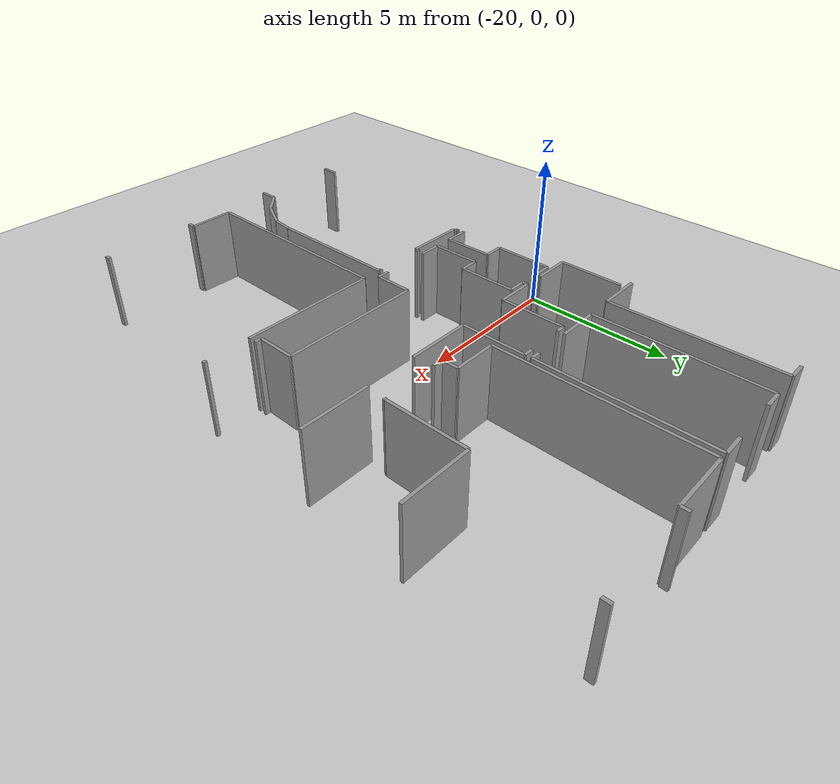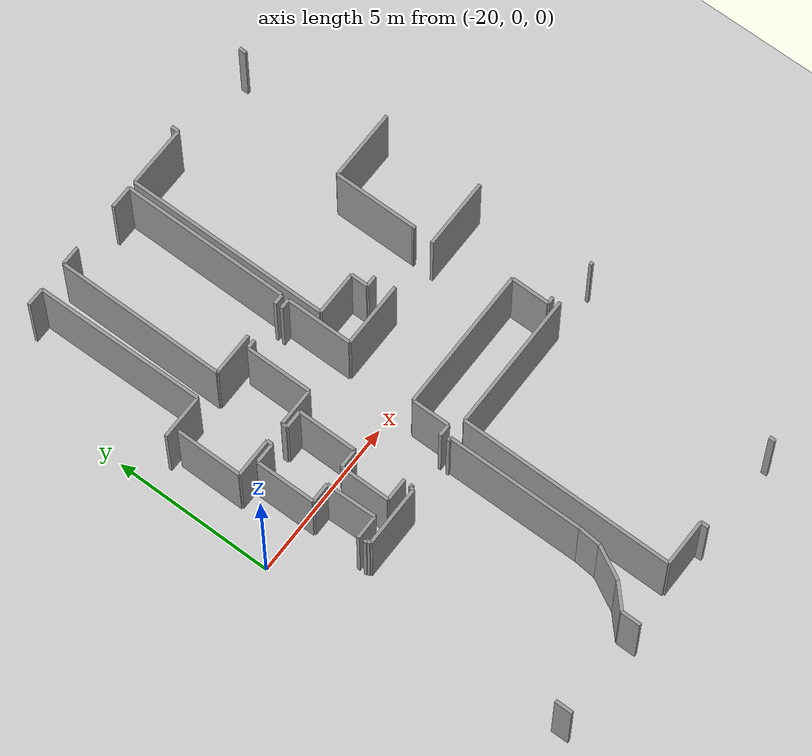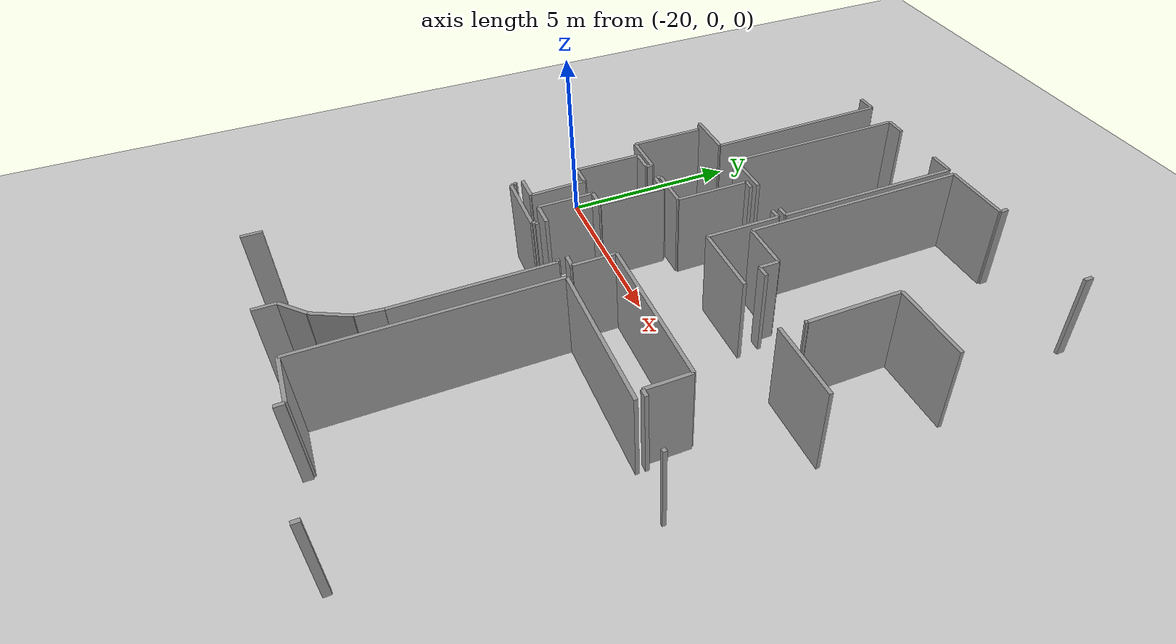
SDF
<sdf version="1.6">
 <world name="default">
  <model name="ground_plane">
   <static>1</static>
   <link name="link">
    <collision name="collision">
     <geometry><plane><normal>0 0 1</normal><size>100 100</size></plane></geometry>
     <surface><friction><ode><mu>100</mu><mu2>50</mu2></ode></friction></surface>
    </collision>
    <visual name="visual">
     <cast_shadows>0</cast_shadows>
     <geometry><plane><normal>0 0 1</normal><size>100 100</size></plane></geometry>
     <material>
      <script><uri>file://media/materials/scripts/gazebo.material</uri><name>Gazebo/Grey</name></script>
     </material>
    </visual>
   </link>
  </model>
  <model name="0510034841_A-40">
   <static>1</static>
   <link name="Wall_41">
    <collision name="Wall_41_Collision">
     <geometry><box><size>0.744516096273 0.1 2.5</size></box></geometry>
     <pose>0.372258048136 0 1.25 0 0 0</pose>
    </collision>
    <visual name="Wall_41_Visual">
     <pose>0.372258048136 0 1.25 0 0 0</pose>
     <geometry><box><size>0.744516096273 0.1 2.5</size></box></geometry>
     <material>
      <script><uri>file://media/materials/scripts/gazebo.material</uri><name>Gazebo/Grey</name></script>
      <ambient>1 1 1 1</ambient>
     </material>
    </visual>
    <pose>16.0339443485 -11.3138519346 0 0 0 3.14159265359</pose>
   </link>
   <link name="Wall_55">
    <collision name="Wall_55_Collision">
     <geometry><box><size>2.03653396974 0.1 2.5</size></box></geometry>
     <pose>1.01826698487 0 1.25 0 0 0</pose>
    </collision>
    <visual name="Wall_55_Visual">
     <pose>1.01826698487 0 1.25 0 0 0</pose>
     <geometry><box><size>2.03653396974 0.1 2.5</size></box></geometry>
     <material>
      <script><uri>file://media/materials/scripts/gazebo.material</uri><name>Gazebo/Grey</name></script>
      <ambient>1 1 1 1</ambient>
     </material>
    </visual>
    <pose>14.8125063471 -5.70871839139 0 0 0 -1.57079632679</pose>
   </link>
   <link name="Wall_56">
    <collision name="Wall_56_Collision">
     <geometry><box><size>1.20023865137 0.1 2.5</size></box></geometry>
     <pose>0.600119325683 0 1.25 0 0 0</pose>
    </collision>
    <visual name="Wall_56_Visual">
     <pose>0.600119325683 0 1.25 0 0 0</pose>
     <geometry><box><size>1.20023865137 0.1 2.5</size></box></geometry>
     <material>
      <script><uri>file://media/materials/scripts/gazebo.material</uri><name>Gazebo/Grey</name></script>
      <ambient>1 1 1 1</ambient>
     </material>
    </visual>
    <pose>14.8125063471 -7.74525236113 0 0 0 0.0</pose>
   </link>
   <link name="Wall_57">
    <collision name="Wall_57_Collision">
     <geometry><box><size>0.166929013913 0.1 2.5</size></box></geometry>
     <pose>0.0834645069564 0 1.25 0 0 0</pose>
    </collision>
    <visual name="Wall_57_Visual">
     <pose>0.0834645069564 0 1.25 0 0 0</pose>
     <geometry><box><size>0.166929013913 0.1 2.5</size></box></geometry>
     <material>
      <script><uri>file://media/materials/scripts/gazebo.material</uri><name>Gazebo/Grey</name></script>
      <ambient>1 1 1 1</ambient>
     </material>
    </visual>
    <pose>16.0127449985 -7.74525236113 0 0 0 -1.57079632679</pose>
   </link>
   <link name="Wall_58">
    <collision name="Wall_58_Collision">
     <geometry><box><size>0.626079008835 0.1 2.5</size></box></geometry>
     <pose>0.313039504418 0 1.25 0 0 0</pose>
    </collision>
    <visual name="Wall_58_Visual">
     <pose>0.313039504418 0 1.25 0 0 0</pose>
     <geometry><box><size>0.626079008835 0.1 2.5</size></box></geometry>
     <material>
      <script><uri>file://media/materials/scripts/gazebo.material</uri><name>Gazebo/Grey</name></script>
      <ambient>1 1 1 1</ambient>
     </material>
    </visual>
    <pose>16.0127449985 -7.91218137504 0 0 0 3.14159265359</pose>
   </link>
   <link name="Wall_59">
    <collision name="Wall_59_Collision">
     <geometry><box><size>1.84535899259 0.1 2.5</size></box></geometry>
     <pose>0.922679496293 0 1.25 0 0 0</pose>
    </collision>
    <visual name="Wall_59_Visual">
     <pose>0.922679496293 0 1.25 0 0 0</pose>
     <geometry><box><size>1.84535899259 0.1 2.5</size></box></geometry>
     <material>
      <script><uri>file://media/materials/scripts/gazebo.material</uri><name>Gazebo/Grey</name></script>
      <ambient>1 1 1 1</ambient>
     </material>
    </visual>
    <pose>15.3866659896 -7.91218137504 0 0 0 -1.57079632679</pose>
   </link>
   <link name="Wall_60">
    <collision name="Wall_60_Collision">
     <geometry><box><size>0.606783792018 0.1 2.5</size></box></geometry>
     <pose>0.303391896009 0 1.25 0 0 0</pose>
    </collision>
    <visual name="Wall_60_Visual">
     <pose>0.303391896009 0 1.25 0 0 0</pose>
     <geometry><box><size>0.606783792018 0.1 2.5</size></box></geometry>
     <material>
      <script><uri>file://media/materials/scripts/gazebo.material</uri><name>Gazebo/Grey</name></script>
      <ambient>1 1 1 1</ambient>
     </material>
    </visual>
    <pose>15.3866659896 -9.75754036762 0 0 0 0.0</pose>
   </link>
   <link name="Wall_61">
    <collision name="Wall_61_Collision">
     <geometry><box><size>1.55683830356 0.1 2.5</size></box></geometry>
     <pose>0.778419151782 0 1.25 0 0 0</pose>
    </collision>
    <visual name="Wall_61_Visual">
     <pose>0.778419151782 0 1.25 0 0 0</pose>
     <geometry><box><size>1.55683830356 0.1 2.5</size></box></geometry>
     <material>
      <script><uri>file://media/materials/scripts/gazebo.material</uri><name>Gazebo/Grey</name></script>
      <ambient>1 1 1 1</ambient>
     </material>
    </visual>
    <pose>15.9934497817 -9.75754036762 0 0 0 -1.54478262046</pose>
   </link>
   <link name="Wall_62">
    <collision name="Wall_62_Collision">
     <geometry><box><size>1.37249923835 0.1 2.5</size></box></geometry>
     <pose>0.686249619173 0 1.25 0 0 0</pose>
    </collision>
    <visual name="Wall_62_Visual">
     <pose>0.686249619173 0 1.25 0 0 0</pose>
     <geometry><box><size>1.37249923835 0.1 2.5</size></box></geometry>
     <material>
      <script><uri>file://media/materials/scripts/gazebo.material</uri><name>Gazebo/Grey</name></script>
      <ambient>1 1 1 1</ambient>
     </material>
    </visual>
    <pose>15.8661267391 -5.52198639179 0 0 0 3.14159265359</pose>
   </link>
   <link name="Wall_66">
    <collision name="Wall_66_Collision">
     <geometry><box><size>0.561719305372 0.1 2.5</size></box></geometry>
     <pose>0.280859652686 0 1.25 0 0 0</pose>
    </collision>
    <visual name="Wall_66_Visual">
     <pose>0.280859652686 0 1.25 0 0 0</pose>
     <geometry><box><size>0.561719305372 0.1 2.5</size></box></geometry>
     <material>
      <script><uri>file://media/materials/scripts/gazebo.material</uri><name>Gazebo/Grey</name></script>
      <ambient>1 1 1 1</ambient>
     </material>
    </visual>
    <pose>15.2480450899 -0.235731694932 0 0 0 0.0</pose>
   </link>
   <link name="Wall_67">
    <collision name="Wall_67_Collision">
     <geometry><box><size>5.28655515756 0.1 2.5</size></box></geometry>
     <pose>2.64327757878 0 1.25 0 0 0</pose>
    </collision>
    <visual name="Wall_67_Visual">
     <pose>2.64327757878 0 1.25 0 0 0</pose>
     <geometry><box><size>5.28655515756 0.1 2.5</size></box></geometry>
     <material>
      <script><uri>file://media/materials/scripts/gazebo.material</uri><name>Gazebo/Grey</name></script>
      <ambient>1 1 1 1</ambient>
     </material>
    </visual>
    <pose>15.8097643952 -0.235731694932 0 0 0 -1.56013467474</pose>
   </link>
   <link name="Wall_68">
    <collision name="Wall_68_Collision">
     <geometry><box><size>0.108408652381 0.1 2.5</size></box></geometry>
     <pose>0.0542043261907 0 1.25 0 0 0</pose>
    </collision>
    <visual name="Wall_68_Visual">
     <pose>0.0542043261907 0 1.25 0 0 0</pose>
     <geometry><box><size>0.108408652381 0.1 2.5</size></box></geometry>
     <material>
      <script><uri>file://media/materials/scripts/gazebo.material</uri><name>Gazebo/Grey</name></script>
      <ambient>1 1 1 1</ambient>
     </material>
    </visual>
    <pose>19.0090890627 -11.5597390068 0 0 0 3.14159265359</pose>
   </link>
   <link name="Wall_69">
    <collision name="Wall_69_Collision">
     <geometry><box><size>0.108535594597 0.1 2.5</size></box></geometry>
     <pose>0.0542677972987 0 1.25 0 0 0</pose>
    </collision>
    <visual name="Wall_69_Visual">
     <pose>0.0542677972987 0 1.25 0 0 0</pose>
     <geometry><box><size>0.108535594597 0.1 2.5</size></box></geometry>
     <material>
      <script><uri>file://media/materials/scripts/gazebo.material</uri><name>Gazebo/Grey</name></script>
      <ambient>1 1 1 1</ambient>
     </material>
    </visual>
    <pose>17.3481771098 -11.5597390068 0 0 0 3.14159265359</pose>
   </link>
   <link name="Wall_70">
    <collision name="Wall_70_Collision">
     <geometry><box><size>0.108535594597 0.1 2.5</size></box></geometry>
     <pose>0.0542677972987 0 1.25 0 0 0</pose>
    </collision>
    <visual name="Wall_70_Visual">
     <pose>0.0542677972987 0 1.25 0 0 0</pose>
     <geometry><box><size>0.108535594597 0.1 2.5</size></box></geometry>
     <material>
      <script><uri>file://media/materials/scripts/gazebo.material</uri><name>Gazebo/Grey</name></script>
      <ambient>1 1 1 1</ambient>
     </material>
    </visual>
    <pose>17.2396415152 -11.5597390068 0 0 0 -1.57079632679</pose>
   </link>
   <link name="Wall_71">
    <collision name="Wall_71_Collision">
     <geometry><box><size>1.86313090281 0.1 2.5</size></box></geometry>
     <pose>0.931565451407 0 1.25 0 0 0</pose>
    </collision>
    <visual name="Wall_71_Visual">
     <pose>0.931565451407 0 1.25 0 0 0</pose>
     <geometry><box><size>1.86313090281 0.1 2.5</size></box></geometry>
     <material>
      <script><uri>file://media/materials/scripts/gazebo.material</uri><name>Gazebo/Grey</name></script>
      <ambient>1 1 1 1</ambient>
     </material>
    </visual>
    <pose>17.2396415152 -11.6682746014 0 0 0 3.14159265359</pose>
   </link>
   <link name="Wall_72">
    <collision name="Wall_72_Collision">
     <geometry><box><size>0.132527673403 0.1 2.5</size></box></geometry>
     <pose>0.0662638367015 0 1.25 0 0 0</pose>
    </collision>
    <visual name="Wall_72_Visual">
     <pose>0.0662638367015 0 1.25 0 0 0</pose>
     <geometry><box><size>0.132527673403 0.1 2.5</size></box></geometry>
     <material>
      <script><uri>file://media/materials/scripts/gazebo.material</uri><name>Gazebo/Grey</name></script>
      <ambient>1 1 1 1</ambient>
     </material>
    </visual>
    <pose>15.3765106124 -11.6682746014 0 0 0 1.57079632679</pose>
   </link>
   <link name="Wall_73">
    <collision name="Wall_73_Collision">
     <geometry><box><size>0.0870823601097 0.1 2.5</size></box></geometry>
     <pose>0.0435411800548 0 1.25 0 0 0</pose>
    </collision>
    <visual name="Wall_73_Visual">
     <pose>0.0435411800548 0 1.25 0 0 0</pose>
     <geometry><box><size>0.0870823601097 0.1 2.5</size></box></geometry>
     <material>
      <script><uri>file://media/materials/scripts/gazebo.material</uri><name>Gazebo/Grey</name></script>
      <ambient>1 1 1 1</ambient>
     </material>
    </visual>
    <pose>15.3765106124 -11.535746928 0 0 0 3.14159265359</pose>
   </link>
   <link name="Wall_79">
    <collision name="Wall_79_Collision">
     <geometry><box><size>0.547247892759 0.1 2.5</size></box></geometry>
     <pose>0.27362394638 0 1.25 0 0 0</pose>
    </collision>
    <visual name="Wall_79_Visual">
     <pose>0.27362394638 0 1.25 0 0 0</pose>
     <geometry><box><size>0.547247892759 0.1 2.5</size></box></geometry>
     <material>
      <script><uri>file://media/materials/scripts/gazebo.material</uri><name>Gazebo/Grey</name></script>
      <ambient>1 1 1 1</ambient>
     </material>
    </visual>
    <pose>14.8107291561 -18.0868538641 0 0 0 -1.57079632679</pose>
   </link>
   <link name="Wall_80">
    <collision name="Wall_80_Collision">
     <geometry><box><size>0.602467756677 0.1 2.5</size></box></geometry>
     <pose>0.301233878339 0 1.25 0 0 0</pose>
    </collision>
    <visual name="Wall_80_Visual">
     <pose>0.301233878339 0 1.25 0 0 0</pose>
     <geometry><box><size>0.602467756677 0.1 2.5</size></box></geometry>
     <material>
      <script><uri>file://media/materials/scripts/gazebo.material</uri><name>Gazebo/Grey</name></script>
      <ambient>1 1 1 1</ambient>
     </material>
    </visual>
    <pose>17.8079618158 -18.6341017569 0 0 0 1.57079632679</pose>
   </link>
   <link name="Wall_81">
    <collision name="Wall_81_Collision">
     <geometry><box><size>0.872937094638 0.1 2.5</size></box></geometry>
     <pose>0.436468547319 0 1.25 0 0 0</pose>
    </collision>
    <visual name="Wall_81_Visual">
     <pose>0.436468547319 0 1.25 0 0 0</pose>
     <geometry><box><size>0.872937094638 0.1 2.5</size></box></geometry>
     <material>
      <script><uri>file://media/materials/scripts/gazebo.material</uri><name>Gazebo/Grey</name></script>
      <ambient>1 1 1 1</ambient>
     </material>
    </visual>
    <pose>17.8079618158 -18.0316340002 0 0 0 0.750121107763</pose>
   </link>
   <link name="Wall_82">
    <collision name="Wall_82_Collision">
     <geometry><box><size>1.08445523271 0.1 2.5</size></box></geometry>
     <pose>0.542227616355 0 1.25 0 0 0</pose>
    </collision>
    <visual name="Wall_82_Visual">
     <pose>0.542227616355 0 1.25 0 0 0</pose>
     <geometry><box><size>1.08445523271 0.1 2.5</size></box></geometry>
     <material>
      <script><uri>file://media/materials/scripts/gazebo.material</uri><name>Gazebo/Grey</name></script>
      <ambient>1 1 1 1</ambient>
     </material>
    </visual>
    <pose>18.446608104 -17.436528892 0 0 0 1.08311815572</pose>
   </link>
   <link name="Wall_83">
    <collision name="Wall_83_Collision">
     <geometry><box><size>0.6926302795 0.1 2.5</size></box></geometry>
     <pose>0.34631513975 0 1.25 0 0 0</pose>
    </collision>
    <visual name="Wall_83_Visual">
     <pose>0.34631513975 0 1.25 0 0 0</pose>
     <geometry><box><size>0.6926302795 0.1 2.5</size></box></geometry>
     <material>
      <script><uri>file://media/materials/scripts/gazebo.material</uri><name>Gazebo/Grey</name></script>
      <ambient>1 1 1 1</ambient>
     </material>
    </visual>
    <pose>18.9547577943 -16.4784959886 0 0 0 1.47645278719</pose>
   </link>
   <link name="Wall_84">
    <collision name="Wall_84_Collision">
     <geometry><box><size>4.22922095531 0.1 2.5</size></box></geometry>
     <pose>2.11461047765 0 1.25 0 0 0</pose>
    </collision>
    <visual name="Wall_84_Visual">
     <pose>2.11461047765 0 1.25 0 0 0</pose>
     <geometry><box><size>4.22922095531 0.1 2.5</size></box></geometry>
     <material>
      <script><uri>file://media/materials/scripts/gazebo.material</uri><name>Gazebo/Grey</name></script>
      <ambient>1 1 1 1</ambient>
     </material>
    </visual>
    <pose>19.0200060932 -15.7889458718 0 0 0 1.57337766336</pose>
   </link>
   <link name="Wall_85">
    <collision name="Wall_85_Collision">
     <geometry><box><size>0.315070579872 0.1 2.5</size></box></geometry>
     <pose>0.157535289936 0 1.25 0 0 0</pose>
    </collision>
    <visual name="Wall_85_Visual">
     <pose>0.157535289936 0 1.25 0 0 0</pose>
     <geometry><box><size>0.315070579872 0.1 2.5</size></box></geometry>
     <material>
      <script><uri>file://media/materials/scripts/gazebo.material</uri><name>Gazebo/Grey</name></script>
      <ambient>1 1 1 1</ambient>
     </material>
    </visual>
    <pose>19.5713161369 -5.48047628719 0 0 0 3.14159265359</pose>
   </link>
   <link name="Wall_86">
    <collision name="Wall_86_Collision">
     <geometry><box><size>1.34381029755 0.1 2.5</size></box></geometry>
     <pose>0.671905148776 0 1.25 0 0 0</pose>
    </collision>
    <visual name="Wall_86_Visual">
     <pose>0.671905148776 0 1.25 0 0 0</pose>
     <geometry><box><size>1.34381029755 0.1 2.5</size></box></geometry>
     <material>
      <script><uri>file://media/materials/scripts/gazebo.material</uri><name>Gazebo/Grey</name></script>
      <ambient>1 1 1 1</ambient>
     </material>
    </visual>
    <pose>18.0910429572 -5.48047628719 0 0 0 3.14159265359</pose>
   </link>
   <link name="Wall_87">
    <collision name="Wall_87_Collision">
     <geometry><box><size>5.2554077384 0.1 2.5</size></box></geometry>
     <pose>2.6277038692 0 1.25 0 0 0</pose>
    </collision>
    <visual name="Wall_87_Visual">
     <pose>2.6277038692 0 1.25 0 0 0</pose>
     <geometry><box><size>5.2554077384 0.1 2.5</size></box></geometry>
     <material>
      <script><uri>file://media/materials/scripts/gazebo.material</uri><name>Gazebo/Grey</name></script>
      <ambient>1 1 1 1</ambient>
     </material>
    </visual>
    <pose>16.7472326597 -5.48047628719 0 0 0 1.57079632679</pose>
   </link>
   <link name="Wall_88">
    <collision name="Wall_88_Collision">
     <geometry><box><size>0.587996344064 0.1 2.5</size></box></geometry>
     <pose>0.293998172032 0 1.25 0 0 0</pose>
    </collision>
    <visual name="Wall_88_Visual">
     <pose>0.293998172032 0 1.25 0 0 0</pose>
     <geometry><box><size>0.587996344064 0.1 2.5</size></box></geometry>
     <material>
      <script><uri>file://media/materials/scripts/gazebo.material</uri><name>Gazebo/Grey</name></script>
      <ambient>1 1 1 1</ambient>
     </material>
    </visual>
    <pose>16.7472326597 -0.225068548797 0 0 0 0.0</pose>
   </link>
   <link name="Wall_89">
    <collision name="Wall_89_Collision">
     <geometry><box><size>0.707956738093 0.1 2.5</size></box></geometry>
     <pose>0.353978369046 0 1.25 0 0 0</pose>
    </collision>
    <visual name="Wall_89_Visual">
     <pose>0.353978369046 0 1.25 0 0 0</pose>
     <geometry><box><size>0.707956738093 0.1 2.5</size></box></geometry>
     <material>
      <script><uri>file://media/materials/scripts/gazebo.material</uri><name>Gazebo/Grey</name></script>
      <ambient>1 1 1 1</ambient>
     </material>
    </visual>
    <pose>18.8718645273 -0.225068548797 0 0 0 0.0</pose>
   </link>
   <link name="Wall_90">
    <collision name="Wall_90_Collision">
     <geometry><box><size>5.25541462056 0.1 2.5</size></box></geometry>
     <pose>2.62770731028 0 1.25 0 0 0</pose>
    </collision>
    <visual name="Wall_90_Visual">
     <pose>2.62770731028 0 1.25 0 0 0</pose>
     <geometry><box><size>5.25541462056 0.1 2.5</size></box></geometry>
     <material>
      <script><uri>file://media/materials/scripts/gazebo.material</uri><name>Gazebo/Grey</name></script>
      <ambient>1 1 1 1</ambient>
     </material>
    </visual>
    <pose>19.5798212654 -0.225068548797 0 0 0 -1.57241468287</pose>
   </link>
   <link name="Wall_91">
    <collision name="Wall_91_Collision">
     <geometry><box><size>2.58403574693 0.1 2.5</size></box></geometry>
     <pose>1.29201787346 0 1.25 0 0 0</pose>
    </collision>
    <visual name="Wall_91_Visual">
     <pose>1.29201787346 0 1.25 0 0 0</pose>
     <geometry><box><size>2.58403574693 0.1 2.5</size></box></geometry>
     <material>
      <script><uri>file://media/materials/scripts/gazebo.material</uri><name>Gazebo/Grey</name></script>
      <ambient>1 1 1 1</ambient>
     </material>
    </visual>
    <pose>23.317253986 -7.07410886564 0 0 0 1.57079632679</pose>
   </link>
   <link name="Wall_92">
    <collision name="Wall_92_Collision">
     <geometry><box><size>2.21057174774 0.1 2.5</size></box></geometry>
     <pose>1.10528587387 0 1.25 0 0 0</pose>
    </collision>
    <visual name="Wall_92_Visual">
     <pose>1.10528587387 0 1.25 0 0 0</pose>
     <geometry><box><size>2.21057174774 0.1 2.5</size></box></geometry>
     <material>
      <script><uri>file://media/materials/scripts/gazebo.material</uri><name>Gazebo/Grey</name></script>
      <ambient>1 1 1 1</ambient>
     </material>
    </visual>
    <pose>23.317253986 -4.49007311872 0 0 0 0.0</pose>
   </link>
   <link name="Wall_96">
    <collision name="Wall_96_Collision">
     <geometry><box><size>0.235731694932 0.1 2.5</size></box></geometry>
     <pose>0.117865847466 0 1.25 0 0 0</pose>
    </collision>
    <visual name="Wall_96_Visual">
     <pose>0.117865847466 0 1.25 0 0 0</pose>
     <geometry><box><size>0.235731694932 0.1 2.5</size></box></geometry>
     <material>
      <script><uri>file://media/materials/scripts/gazebo.material</uri><name>Gazebo/Grey</name></script>
      <ambient>1 1 1 1</ambient>
     </material>
    </visual>
    <pose>24.7331674622 -0.235731694932 0 0 0 1.57079632679</pose>
   </link>
   <link name="Wall_97">
    <collision name="Wall_97_Collision">
     <geometry><box><size>0.235985579364 0.1 2.5</size></box></geometry>
     <pose>0.117992789682 0 1.25 0 0 0</pose>
    </collision>
    <visual name="Wall_97_Visual">
     <pose>0.117992789682 0 1.25 0 0 0</pose>
     <geometry><box><size>0.235985579364 0.1 2.5</size></box></geometry>
     <material>
      <script><uri>file://media/materials/scripts/gazebo.material</uri><name>Gazebo/Grey</name></script>
      <ambient>1 1 1 1</ambient>
     </material>
    </visual>
    <pose>21.7201939677 -0.0 0 0 0 -1.57079632679</pose>
   </link>
   <link name="Wall_98">
    <collision name="Wall_98_Collision">
     <geometry><box><size>1.91530415355 0.1 2.5</size></box></geometry>
     <pose>0.957652076775 0 1.25 0 0 0</pose>
    </collision>
    <visual name="Wall_98_Visual">
     <pose>0.957652076775 0 1.25 0 0 0</pose>
     <geometry><box><size>1.91530415355 0.1 2.5</size></box></geometry>
     <material>
      <script><uri>file://media/materials/scripts/gazebo.material</uri><name>Gazebo/Grey</name></script>
      <ambient>1 1 1 1</ambient>
     </material>
    </visual>
    <pose>21.7201939677 -0.235985579364 0 0 0 3.14159265359</pose>
   </link>
   <link name="Wall_99">
    <collision name="Wall_99_Collision">
     <geometry><box><size>6.37161064284 0.1 2.5</size></box></geometry>
     <pose>3.18580532142 0 1.25 0 0 0</pose>
    </collision>
    <visual name="Wall_99_Visual">
     <pose>3.18580532142 0 1.25 0 0 0</pose>
     <geometry><box><size>6.37161064284 0.1 2.5</size></box></geometry>
     <material>
      <script><uri>file://media/materials/scripts/gazebo.material</uri><name>Gazebo/Grey</name></script>
      <ambient>1 1 1 1</ambient>
     </material>
    </visual>
    <pose>19.8048898142 -0.235985579364 0 0 0 -1.57079632679</pose>
   </link>
   <link name="Wall_100">
    <collision name="Wall_100_Collision">
     <geometry><box><size>1.37072204732 0.1 2.5</size></box></geometry>
     <pose>0.685361023662 0 1.25 0 0 0</pose>
    </collision>
    <visual name="Wall_100_Visual">
     <pose>0.685361023662 0 1.25 0 0 0</pose>
     <geometry><box><size>1.37072204732 0.1 2.5</size></box></geometry>
     <material>
      <script><uri>file://media/materials/scripts/gazebo.material</uri><name>Gazebo/Grey</name></script>
      <ambient>1 1 1 1</ambient>
     </material>
    </visual>
    <pose>19.8048898142 -6.6075962222 0 0 0 0.0</pose>
   </link>
   <link name="Wall_101">
    <collision name="Wall_101_Collision">
     <geometry><box><size>0.52985680918 0.1 2.5</size></box></geometry>
     <pose>0.26492840459 0 1.25 0 0 0</pose>
    </collision>
    <visual name="Wall_101_Visual">
     <pose>0.26492840459 0 1.25 0 0 0</pose>
     <geometry><box><size>0.52985680918 0.1 2.5</size></box></geometry>
     <material>
      <script><uri>file://media/materials/scripts/gazebo.material</uri><name>Gazebo/Grey</name></script>
      <ambient>1 1 1 1</ambient>
     </material>
    </visual>
    <pose>21.1756118615 -6.6075962222 0 0 0 -1.57079632679</pose>
   </link>
   <link name="Wall_102">
    <collision name="Wall_102_Collision">
     <geometry><box><size>0.341093734132 0.1 2.5</size></box></geometry>
     <pose>0.170546867066 0 1.25 0 0 0</pose>
    </collision>
    <visual name="Wall_102_Visual">
     <pose>0.170546867066 0 1.25 0 0 0</pose>
     <geometry><box><size>0.341093734132 0.1 2.5</size></box></geometry>
     <material>
      <script><uri>file://media/materials/scripts/gazebo.material</uri><name>Gazebo/Grey</name></script>
      <ambient>1 1 1 1</ambient>
     </material>
    </visual>
    <pose>21.1756118615 -7.13745303138 0 0 0 0.0</pose>
   </link>
   <link name="Wall_103">
    <collision name="Wall_103_Collision">
     <geometry><box><size>0.0650911607706 0.1 2.5</size></box></geometry>
     <pose>0.0325455803853 0 1.25 0 0 0</pose>
    </collision>
    <visual name="Wall_103_Visual">
     <pose>0.0325455803853 0 1.25 0 0 0</pose>
     <geometry><box><size>0.0650911607706 0.1 2.5</size></box></geometry>
     <material>
      <script><uri>file://media/materials/scripts/gazebo.material</uri><name>Gazebo/Grey</name></script>
      <ambient>1 1 1 1</ambient>
     </material>
    </visual>
    <pose>23.3022748045 -7.13745303138 0 0 0 1.33858896548</pose>
   </link>
   <link name="Wall_123">
    <collision name="Wall_123_Collision">
     <geometry><box><size>0.190667208287 0.1 2.5</size></box></geometry>
     <pose>0.0953336041434 0 1.25 0 0 0</pose>
    </collision>
    <visual name="Wall_123_Visual">
     <pose>0.0953336041434 0 1.25 0 0 0</pose>
     <geometry><box><size>0.190667208287 0.1 2.5</size></box></geometry>
     <material>
      <script><uri>file://media/materials/scripts/gazebo.material</uri><name>Gazebo/Grey</name></script>
      <ambient>1 1 1 1</ambient>
     </material>
    </visual>
    <pose>24.1192749061 -18.2809485122 0 0 0 -1.57079632679</pose>
   </link>
   <link name="Wall_124">
    <collision name="Wall_124_Collision">
     <geometry><box><size>0.249568396466 0.1 2.5</size></box></geometry>
     <pose>0.124784198233 0 1.25 0 0 0</pose>
    </collision>
    <visual name="Wall_124_Visual">
     <pose>0.124784198233 0 1.25 0 0 0</pose>
     <geometry><box><size>0.249568396466 0.1 2.5</size></box></geometry>
     <material>
      <script><uri>file://media/materials/scripts/gazebo.material</uri><name>Gazebo/Grey</name></script>
      <ambient>1 1 1 1</ambient>
     </material>
    </visual>
    <pose>21.0736772621 -18.4716157205 0 0 0 1.57079632679</pose>
   </link>
   <link name="Wall_125">
    <collision name="Wall_125_Collision">
     <geometry><box><size>1.43977861278 0.1 2.5</size></box></geometry>
     <pose>0.719889306388 0 1.25 0 0 0</pose>
    </collision>
    <visual name="Wall_125_Visual">
     <pose>0.719889306388 0 1.25 0 0 0</pose>
     <geometry><box><size>1.43977861278 0.1 2.5</size></box></geometry>
     <material>
      <script><uri>file://media/materials/scripts/gazebo.material</uri><name>Gazebo/Grey</name></script>
      <ambient>1 1 1 1</ambient>
     </material>
    </visual>
    <pose>21.0736772621 -18.2220473241 0 0 0 3.14159265359</pose>
   </link>
   <link name="Wall_126">
    <collision name="Wall_126_Collision">
     <geometry><box><size>6.66154666396 0.1 2.5</size></box></geometry>
     <pose>3.33077333198 0 1.25 0 0 0</pose>
    </collision>
    <visual name="Wall_126_Visual">
     <pose>3.33077333198 0 1.25 0 0 0</pose>
     <geometry><box><size>6.66154666396 0.1 2.5</size></box></geometry>
     <material>
      <script><uri>file://media/materials/scripts/gazebo.material</uri><name>Gazebo/Grey</name></script>
      <ambient>1 1 1 1</ambient>
     </material>
    </visual>
    <pose>19.6338986493 -18.2220473241 0 0 0 1.57079632679</pose>
   </link>
   <link name="Wall_127">
    <collision name="Wall_127_Collision">
     <geometry><box><size>4.28099928912 0.1 2.5</size></box></geometry>
     <pose>2.14049964456 0 1.25 0 0 0</pose>
    </collision>
    <visual name="Wall_127_Visual">
     <pose>2.14049964456 0 1.25 0 0 0</pose>
     <geometry><box><size>4.28099928912 0.1 2.5</size></box></geometry>
     <material>
      <script><uri>file://media/materials/scripts/gazebo.material</uri><name>Gazebo/Grey</name></script>
      <ambient>1 1 1 1</ambient>
     </material>
    </visual>
    <pose>19.6338986493 -11.5605006601 0 0 0 0.0</pose>
   </link>
   <link name="Wall_128">
    <collision name="Wall_128_Collision">
     <geometry><box><size>0.101553772723 0.1 2.5</size></box></geometry>
     <pose>0.0507768863613 0 1.25 0 0 0</pose>
    </collision>
    <visual name="Wall_128_Visual">
     <pose>0.0507768863613 0 1.25 0 0 0</pose>
     <geometry><box><size>0.101553772723 0.1 2.5</size></box></geometry>
     <material>
      <script><uri>file://media/materials/scripts/gazebo.material</uri><name>Gazebo/Grey</name></script>
      <ambient>1 1 1 1</ambient>
     </material>
    </visual>
    <pose>25.2852391591 -11.5605006601 0 0 0 0.0</pose>
   </link>
   <link name="Wall_131">
    <collision name="Wall_131_Collision">
     <geometry><box><size>0.216944246979 0.1 2.5</size></box></geometry>
     <pose>0.108472123489 0 1.25 0 0 0</pose>
    </collision>
    <visual name="Wall_131_Visual">
     <pose>0.108472123489 0 1.25 0 0 0</pose>
     <geometry><box><size>0.216944246979 0.1 2.5</size></box></geometry>
     <material>
      <script><uri>file://media/materials/scripts/gazebo.material</uri><name>Gazebo/Grey</name></script>
      <ambient>1 1 1 1</ambient>
     </material>
    </visual>
    <pose>23.9169290139 -11.3180410277 0 0 0 3.14159265359</pose>
   </link>
   <link name="Wall_132">
    <collision name="Wall_132_Collision">
     <geometry><box><size>1.19389154057 0.1 2.5</size></box></geometry>
     <pose>0.596945770285 0 1.25 0 0 0</pose>
    </collision>
    <visual name="Wall_132_Visual">
     <pose>0.596945770285 0 1.25 0 0 0</pose>
     <geometry><box><size>1.19389154057 0.1 2.5</size></box></geometry>
     <material>
      <script><uri>file://media/materials/scripts/gazebo.material</uri><name>Gazebo/Grey</name></script>
      <ambient>1 1 1 1</ambient>
     </material>
    </visual>
    <pose>23.6999847669 -11.3180410277 0 0 0 1.57079632679</pose>
   </link>
   <link name="Wall_133">
    <collision name="Wall_133_Collision">
     <geometry><box><size>4.43206052605 0.1 2.5</size></box></geometry>
     <pose>2.21603026302 0 1.25 0 0 0</pose>
    </collision>
    <visual name="Wall_133_Visual">
     <pose>2.21603026302 0 1.25 0 0 0</pose>
     <geometry><box><size>4.43206052605 0.1 2.5</size></box></geometry>
     <material>
      <script><uri>file://media/materials/scripts/gazebo.material</uri><name>Gazebo/Grey</name></script>
      <ambient>1 1 1 1</ambient>
     </material>
    </visual>
    <pose>23.6999847669 -10.1241494872 0 0 0 3.14159265359</pose>
   </link>
   <link name="Wall_134">
    <collision name="Wall_134_Collision">
     <geometry><box><size>1.17688128364 0.1 2.5</size></box></geometry>
     <pose>0.58844064182 0 1.25 0 0 0</pose>
    </collision>
    <visual name="Wall_134_Visual">
     <pose>0.58844064182 0 1.25 0 0 0</pose>
     <geometry><box><size>1.17688128364 0.1 2.5</size></box></geometry>
     <material>
      <script><uri>file://media/materials/scripts/gazebo.material</uri><name>Gazebo/Grey</name></script>
      <ambient>1 1 1 1</ambient>
     </material>
    </visual>
    <pose>19.2679242409 -10.1241494872 0 0 0 -1.57079632679</pose>
   </link>
   <link name="Wall_135">
    <collision name="Wall_135_Collision">
     <geometry><box><size>0.375622016858 0.1 2.5</size></box></geometry>
     <pose>0.187811008429 0 1.25 0 0 0</pose>
    </collision>
    <visual name="Wall_135_Visual">
     <pose>0.187811008429 0 1.25 0 0 0</pose>
     <geometry><box><size>0.375622016858 0.1 2.5</size></box></geometry>
     <material>
      <script><uri>file://media/materials/scripts/gazebo.material</uri><name>Gazebo/Grey</name></script>
      <ambient>1 1 1 1</ambient>
     </material>
    </visual>
    <pose>19.2679242409 -11.3010307708 0 0 0 3.14159265359</pose>
   </link>
   <link name="Wall_136">
    <collision name="Wall_136_Collision">
     <geometry><box><size>0.710241697979 0.1 2.5</size></box></geometry>
     <pose>0.35512084899 0 1.25 0 0 0</pose>
    </collision>
    <visual name="Wall_136_Visual">
     <pose>0.35512084899 0 1.25 0 0 0</pose>
     <geometry><box><size>0.710241697979 0.1 2.5</size></box></geometry>
     <material>
      <script><uri>file://media/materials/scripts/gazebo.material</uri><name>Gazebo/Grey</name></script>
      <ambient>1 1 1 1</ambient>
     </material>
    </visual>
    <pose>17.3301513151 -11.3010307708 0 0 0 3.14159265359</pose>
   </link>
   <link name="Wall_137">
    <collision name="Wall_137_Collision">
     <geometry><box><size>1.54501370976 0.1 2.5</size></box></geometry>
     <pose>0.77250685488 0 1.25 0 0 0</pose>
    </collision>
    <visual name="Wall_137_Visual">
     <pose>0.77250685488 0 1.25 0 0 0</pose>
     <geometry><box><size>1.54501370976 0.1 2.5</size></box></geometry>
     <material>
      <script><uri>file://media/materials/scripts/gazebo.material</uri><name>Gazebo/Grey</name></script>
      <ambient>1 1 1 1</ambient>
     </material>
    </visual>
    <pose>16.6199096171 -11.3010307708 0 0 0 1.57079632679</pose>
   </link>
   <link name="Wall_138">
    <collision name="Wall_138_Collision">
     <geometry><box><size>0.575936833553 0.1 2.5</size></box></geometry>
     <pose>0.287968416777 0 1.25 0 0 0</pose>
    </collision>
    <visual name="Wall_138_Visual">
     <pose>0.287968416777 0 1.25 0 0 0</pose>
     <geometry><box><size>0.575936833553 0.1 2.5</size></box></geometry>
     <material>
      <script><uri>file://media/materials/scripts/gazebo.material</uri><name>Gazebo/Grey</name></script>
      <ambient>1 1 1 1</ambient>
     </material>
    </visual>
    <pose>16.6199096171 -9.75601706103 0 0 0 0.0</pose>
   </link>
   <link name="Wall_139">
    <collision name="Wall_139_Collision">
     <geometry><box><size>1.83329948208 0.1 2.5</size></box></geometry>
     <pose>0.916649741038 0 1.25 0 0 0</pose>
    </collision>
    <visual name="Wall_139_Visual">
     <pose>0.916649741038 0 1.25 0 0 0</pose>
     <geometry><box><size>1.83329948208 0.1 2.5</size></box></geometry>
     <material>
      <script><uri>file://media/materials/scripts/gazebo.material</uri><name>Gazebo/Grey</name></script>
      <ambient>1 1 1 1</ambient>
     </material>
    </visual>
    <pose>17.1958464507 -9.75601706103 0 0 0 1.57079632679</pose>
   </link>
   <link name="Wall_140">
    <collision name="Wall_140_Collision">
     <geometry><box><size>0.55930740327 0.1 2.5</size></box></geometry>
     <pose>0.279653701635 0 1.25 0 0 0</pose>
    </collision>
    <visual name="Wall_140_Visual">
     <pose>0.279653701635 0 1.25 0 0 0</pose>
     <geometry><box><size>0.55930740327 0.1 2.5</size></box></geometry>
     <material>
      <script><uri>file://media/materials/scripts/gazebo.material</uri><name>Gazebo/Grey</name></script>
      <ambient>1 1 1 1</ambient>
     </material>
    </visual>
    <pose>17.1958464507 -7.92271757896 0 0 0 3.14159265359</pose>
   </link>
   <link name="Wall_141">
    <collision name="Wall_141_Collision">
     <geometry><box><size>0.163882400731 0.1 2.5</size></box></geometry>
     <pose>0.0819412003656 0 1.25 0 0 0</pose>
    </collision>
    <visual name="Wall_141_Visual">
     <pose>0.0819412003656 0 1.25 0 0 0</pose>
     <geometry><box><size>0.163882400731 0.1 2.5</size></box></geometry>
     <material>
      <script><uri>file://media/materials/scripts/gazebo.material</uri><name>Gazebo/Grey</name></script>
      <ambient>1 1 1 1</ambient>
     </material>
    </visual>
    <pose>16.6365390474 -7.92271757896 0 0 0 1.57079632679</pose>
   </link>
   <link name="Wall_142">
    <collision name="Wall_142_Collision">
     <geometry><box><size>1.17396161267 0.1 2.5</size></box></geometry>
     <pose>0.586980806337 0 1.25 0 0 0</pose>
    </collision>
    <visual name="Wall_142_Visual">
     <pose>0.586980806337 0 1.25 0 0 0</pose>
     <geometry><box><size>1.17396161267 0.1 2.5</size></box></geometry>
     <material>
      <script><uri>file://media/materials/scripts/gazebo.material</uri><name>Gazebo/Grey</name></script>
      <ambient>1 1 1 1</ambient>
     </material>
    </visual>
    <pose>16.6365390474 -7.75883517823 0 0 0 0.0</pose>
   </link>
   <link name="Wall_143">
    <collision name="Wall_143_Collision">
     <geometry><box><size>2.05747943536 0.1 2.5</size></box></geometry>
     <pose>1.02873971768 0 1.25 0 0 0</pose>
    </collision>
    <visual name="Wall_143_Visual">
     <pose>1.02873971768 0 1.25 0 0 0</pose>
     <geometry><box><size>2.05747943536 0.1 2.5</size></box></geometry>
     <material>
      <script><uri>file://media/materials/scripts/gazebo.material</uri><name>Gazebo/Grey</name></script>
      <ambient>1 1 1 1</ambient>
     </material>
    </visual>
    <pose>17.8105006601 -7.75883517823 0 0 0 1.57079632679</pose>
   </link>
   <link name="Wall_144">
    <collision name="Wall_144_Collision">
     <geometry><box><size>0.276607088453 0.1 2.5</size></box></geometry>
     <pose>0.138303544227 0 1.25 0 0 0</pose>
    </collision>
    <visual name="Wall_144_Visual">
     <pose>0.138303544227 0 1.25 0 0 0</pose>
     <geometry><box><size>0.276607088453 0.1 2.5</size></box></geometry>
     <material>
      <script><uri>file://media/materials/scripts/gazebo.material</uri><name>Gazebo/Grey</name></script>
      <ambient>1 1 1 1</ambient>
     </material>
    </visual>
    <pose>17.8105006601 -5.70135574287 0 0 0 0.0</pose>
   </link>
   <link name="Wall_145">
    <collision name="Wall_145_Collision">
     <geometry><box><size>0.315578348736 0.1 2.5</size></box></geometry>
     <pose>0.157789174368 0 1.25 0 0 0</pose>
    </collision>
    <visual name="Wall_145_Visual">
     <pose>0.157789174368 0 1.25 0 0 0</pose>
     <geometry><box><size>0.315578348736 0.1 2.5</size></box></geometry>
     <material>
      <script><uri>file://media/materials/scripts/gazebo.material</uri><name>Gazebo/Grey</name></script>
      <ambient>1 1 1 1</ambient>
     </material>
    </visual>
    <pose>19.2557377882 -5.70135574287 0 0 0 0.0</pose>
   </link>
   <link name="Wall_146">
    <collision name="Wall_146_Collision">
     <geometry><box><size>2.06369960394 0.1 2.5</size></box></geometry>
     <pose>1.03184980197 0 1.25 0 0 0</pose>
    </collision>
    <visual name="Wall_146_Visual">
     <pose>1.03184980197 0 1.25 0 0 0</pose>
     <geometry><box><size>2.06369960394 0.1 2.5</size></box></geometry>
     <material>
      <script><uri>file://media/materials/scripts/gazebo.material</uri><name>Gazebo/Grey</name></script>
      <ambient>1 1 1 1</ambient>
     </material>
    </visual>
    <pose>19.5713161369 -5.70135574287 0 0 0 -1.57079632679</pose>
   </link>
   <link name="Wall_147">
    <collision name="Wall_147_Collision">
     <geometry><box><size>2.01965065502 0.1 2.5</size></box></geometry>
     <pose>1.00982532751 0 1.25 0 0 0</pose>
    </collision>
    <visual name="Wall_147_Visual">
     <pose>1.00982532751 0 1.25 0 0 0</pose>
     <geometry><box><size>2.01965065502 0.1 2.5</size></box></geometry>
     <material>
      <script><uri>file://media/materials/scripts/gazebo.material</uri><name>Gazebo/Grey</name></script>
      <ambient>1 1 1 1</ambient>
     </material>
    </visual>
    <pose>19.5713161369 -7.76505534681 0 0 0 0.0</pose>
   </link>
   <link name="Wall_148">
    <collision name="Wall_148_Collision">
     <geometry><box><size>2.17731288717 0.1 2.5</size></box></geometry>
     <pose>1.08865644359 0 1.25 0 0 0</pose>
    </collision>
    <visual name="Wall_148_Visual">
     <pose>1.08865644359 0 1.25 0 0 0</pose>
     <geometry><box><size>2.17731288717 0.1 2.5</size></box></geometry>
     <material>
      <script><uri>file://media/materials/scripts/gazebo.material</uri><name>Gazebo/Grey</name></script>
      <ambient>1 1 1 1</ambient>
     </material>
    </visual>
    <pose>23.229663857 -7.76505534681 0 0 0 0.0</pose>
   </link>
   <pose>-33.8 9.33765613893 0 0 0 0</pose>
  </model>
 </world>
</sdf>
